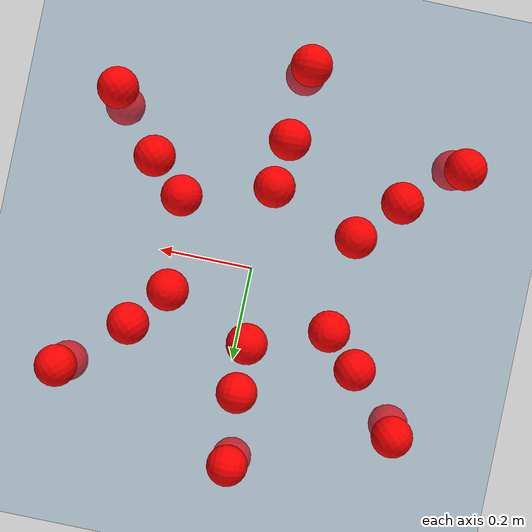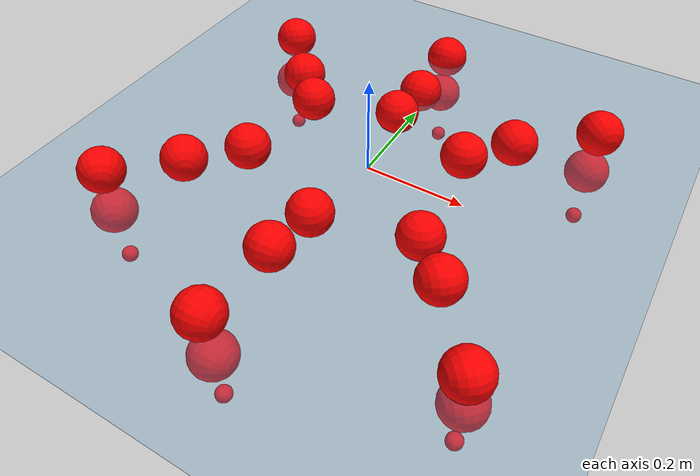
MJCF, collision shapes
<mujoco model="Golem">
  <compiler angle="radian" assetdir="assets" balanceinertia="true" inertiafromgeom="false"/>

  <option timestep="0.005" density="1.2" viscosity="2e-05"/>

  <size nkey="1"/>

  <visual>
    <quality shadowsize="8192"/>
    <map shadowclip="0.5"/>
  </visual>

  <default>
    <default class="/">
      <joint armature="0.01" damping="0.01" frictionloss="0.01"/>
      <geom contype="0" conaffinity="0" group="1" solref="-1000 -80"/>
      <site size="0.01 0.005 0.005" group="5"/>
      <general forcelimited="true" biastype="affine" gainprm="25" biasprm="0 -25 -0.5"/>
      <default class="visual">
        <geom type="mesh" group="2"/>
      </default>
      <default class="collision">
        <geom group="3"/>
      </default>
      <default class="foot">
        <geom size="0.01 0 0" condim="6" group="4" priority="1" solimp="0.015 1 0.01"/>
      </default>
      <default class="reward_collision_sphere">
        <geom group="5" rgba="1 0 0 1"/>
      </default>
    </default>
  </default>

  <asset>
    <texture type="skybox" colorspace="auto" name="//unnamed_texture_0" builtin="gradient" rgb1="0.95 0.95 0.95" rgb2="0.95 0.95 0.95" width="100" height="600"/>
    <texture type="2d" colorspace="auto" name="texplane" builtin="checker" rgb1="0.345 0.575 0.748" rgb2="0.345 0.575 0.748" markrgb="1 1 1" width="512" height="512"/>
    <material name="MatPlane" class="/" texture="texplane" texuniform="true" texrepeat="2 2" specular="0.9"/>
    <mesh name="body" class="/" file="body.stl" scale="0.001 0.001 0.001"/>
    <mesh name="coxa" class="/" file="coxa.stl" scale="0.001 0.001 0.001"/>
    <mesh name="femur" class="/" file="femur.stl" scale="0.001 0.001 0.001"/>
    <mesh name="tibia" class="/" file="tibia.stl" scale="0.001 0.001 0.001"/>
    <mesh name="tarsus" class="/" file="tarsus.stl" scale="0.001 0.001 0.001"/>
  </asset>

  <worldbody>
    <geom name="floor" class="/" size="100 100 0.125" type="plane" group="0" material="MatPlane"/>
    <light name="toplight_shadow" class="/" pos="0 0 5" dir="0.0990148 0.0990148 -0.990148" type="directional" ambient="0.04 0.04 0.04" diffuse="0.55 0.55 0.55" specular="0.12 0.12 0.12"/>
    <light name="toplight_fill" class="/" pos="0 0 5" dir="0.0990148 0.0990148 -0.990148" type="directional" castshadow="false" ambient="0.04 0.04 0.04" diffuse="0.3 0.3 0.3" specular="0.08 0.08 0.08"/>
    <body name="trunk" pos="-0.0131941 -0.00806004 -0.00738589" quat="1 -3.54557e-05 -0.000147043 -0.000269324">
      <inertial pos="-0.00377979 -0.0025478 -0.00349659" quat="0.999998 -0.000483623 0.00189599 -6.59099e-05" mass="5.338" diaginertia="0.0326998 0.085876 0.000901638"/>
      <joint name="//unnamed_joint_0" type="free"/>
      <geom name="//unnamed_geom_1" class="/" pos="0 0 0.039624" quat="1 0 0 0" type="mesh" rgba="0.9 0.9 0.9 1" mesh="body"/>
      <site name="imu" class="/" pos="0.0956668 -0.059198 0.0408082" size="0.0111639"/>
      <camera name="track" class="/" pos="0 -3.04218 0" quat="0.707107 0.707107 0 0" mode="trackcom"/>
      <camera name="ego_camera" class="/" pos="0.157165 0 0.0619125" quat="-0.5 -0.5 0.5 0.5"/>
      <body name="coxa_RR" pos="-0.215167 -0.12583 0.0529185" quat="0.382604 0.000140065 9.04771e-05 -0.923912">
        <inertial pos="-0.00116108 0.0138995 0.00612573" quat="0.998873 -0.00309679 -0.0441685 0.0171028" mass="0.315551" diaginertia="0.027858 0.0880714 0.000990589"/>
        <joint name="coxa_joint_RR" class="/" pos="0 0 0" axis="-0.0201135 -0.0237617 -0.999515" stiffness="0.0603475" range="-3.16272 3.15573" armature="0.0168745" damping="0.0321336" frictionloss="0.0108663"/>
        <geom name="//unnamed_geom_2" class="/" type="mesh" rgba="0.2 0.2 0.2 1" mesh="coxa"/>
        <geom name="//unnamed_geom_3" class="reward_collision_sphere" size="0.0446556" pos="-0.0362688 0 0"/>
        <body name="femur_RR" pos="0.0844332 0.00702351 0.00199173" quat="0.500247 -0.500233 0.499894 0.499625">
          <inertial pos="0.00669895 0.00543845 -0.000627159" quat="0.99976 -0.00900569 -0.00450501 -0.0194685" mass="0.283498" diaginertia="0.0262897 0.0783188 0.000752541"/>
          <joint name="femur_joint_RR" class="/" pos="0 0 0" axis="0.0196778 -0.00280101 -0.999802" stiffness="0.0623214" range="-2.90524 3.32559" armature="0.0132233" damping="0.0108634" frictionloss="0.0049614"/>
          <geom name="//unnamed_geom_4" class="/" type="mesh" rgba="0.9 0.9 0.9 1" mesh="femur"/>
          <geom name="//unnamed_geom_5" class="reward_collision_sphere" size="0.0446556"/>
          <body name="tibia_RR" pos="0.00920729 -0.151641 -0.0140988" quat="0.00643856 0.999977 -5.23155e-05 0.00233953">
            <inertial pos="0.0117533 0.00259514 -0.000884749" quat="0.999997 0.000716789 9.92616e-05 0.00238294" mass="0.26677" diaginertia="0.0288284 0.0941022 0.00110867"/>
            <joint name="tibia_joint_RR" class="/" pos="0 0 0" axis="-0.0571495 -0.00828983 0.998331" range="-3.26455 2.97221" armature="0.0123256" damping="0.0300904" frictionloss="0.011381"/>
            <geom name="//unnamed_geom_6" class="/" type="mesh" rgba="0.2 0.2 0.2 1" mesh="tibia"/>
            <geom name="//unnamed_geom_7" class="reward_collision_sphere" size="0.0446556"/>
            <body name="tarsus_RR" pos="0.0958112 -0.000638676 -0.0112774" quat="1 -0.000339463 -5.90159e-06 -8.66513e-05">
              <inertial pos="0.0609946 0.000752413 -0.00653952" quat="0.488195 0.51308 0.501662 0.496739" mass="0.28191" diaginertia="0.0248426 0.0756204 0.000928131"/>
              <joint name="tarsus_joint_RR" class="/" pos="0 0 0" axis="0.000413269 -0.00047878 1" range="-2.90676 2.96481" armature="0.0133059" damping="0.0288097" frictionloss="0.0149096"/>
              <geom name="//unnamed_geom_8" class="/" type="mesh" rgba="0.9 0.9 0.9 1" mesh="tarsus"/>
              <geom name="foot_1" class="foot" size="0.0110992" pos="0.135403 0 0" quat="0 -0.707107 0 0.707107"/>
              <geom name="//unnamed_geom_10" class="reward_collision_sphere" size="0.0446556"/>
              <geom name="//unnamed_geom_11" class="reward_collision_sphere" size="0.0167459" pos="0.129963 0 0"/>
              <site name="foot_1" class="foot" pos="0.135403 0 0" quat="0 -0.707107 0 0.707107" size="0.0111639"/>
            </body>
          </body>
        </body>
      </body>
      <body name="coxa_RM" pos="-0.000681833 -0.207474 0.0350157" quat="0.704776 -0.000470777 0.00270017 -0.709425">
        <inertial pos="-0.00973713 0.000963419 0.00647366" quat="0.999492 0.0169634 0.00992642 0.0250963" mass="0.295296" diaginertia="0.0277636 0.0938751 0.000795393"/>
        <joint name="coxa_joint_RM" class="/" pos="0 0 0" axis="-0.0144525 -0.00411276 -0.999887" range="-3.03275 3.08669" armature="0.0101807" damping="0.0557561" frictionloss="0.0195243"/>
        <geom name="//unnamed_geom_12" class="/" type="mesh" rgba="0.2 0.2 0.2 1" mesh="coxa"/>
        <geom name="//unnamed_geom_13" class="reward_collision_sphere" size="0.0446556" pos="-0.0362688 0 0"/>
        <body name="femur_RM" pos="0.0675161 -0.0111505 0.0046709" quat="0.494666 -0.502855 0.500383 0.502056">
          <inertial pos="-0.00330869 0.00580811 -0.000155598" quat="0.999684 0.024658 0.00483699 -0.000936564" mass="0.229432" diaginertia="0.0212494 0.0763528 0.000761841"/>
          <joint name="femur_joint_RM" class="/" pos="0 0 0" axis="-0.0403558 0.00240053 -0.999182" range="-3.15554 3.11456" armature="0.0149116" damping="0" frictionloss="0.0111973"/>
          <geom name="//unnamed_geom_14" class="/" type="mesh" rgba="0.9 0.9 0.9 1" mesh="femur"/>
          <geom name="//unnamed_geom_15" class="reward_collision_sphere" size="0.0446556"/>
          <body name="tibia_RM" pos="0.00176522 -0.163612 -0.0136854" quat="-1.26525e-06 1 -3.63726e-06 2.4895e-06">
            <inertial pos="-0.00908106 0.0135985 0.000727398" quat="0.998192 0.0141269 0.0500386 0.0301531" mass="0.339893" diaginertia="0.0272181 0.0715035 0.000994298"/>
            <joint name="tibia_joint_RM" class="/" pos="0 0 0" axis="-0.00261685 -0.00927288 0.999954" range="-2.89849 2.84104" armature="0.0119777" damping="0.0182419" frictionloss="0.00934937"/>
            <geom name="//unnamed_geom_16" class="/" type="mesh" rgba="0.2 0.2 0.2 1" mesh="tibia"/>
            <geom name="//unnamed_geom_17" class="reward_collision_sphere" size="0.0446556"/>
            <body name="tarsus_RM" pos="0.108068 0.00263403 -0.00878423" quat="1 0.000322676 -0.000433128 0.000290347">
              <inertial pos="0.0696798 0.00894131 -0.0100606" quat="0.486947 0.455837 0.503069 0.549561" mass="0.229107" diaginertia="0.0293301 0.0887734 0.00101805"/>
              <joint name="tarsus_joint_RM" class="/" pos="0 0 0" axis="-0.00185686 0.00142162 0.999997" stiffness="0.0463576" range="-3.31112 3.21802" armature="0.00779871" damping="0.00209699" frictionloss="0.0105666"/>
              <geom name="//unnamed_geom_18" class="/" type="mesh" rgba="0.9 0.9 0.9 1" mesh="tarsus"/>
              <geom name="foot_2" class="foot" size="0.00959467" pos="0.135403 0 0" quat="0 -0.707107 0 0.707107"/>
              <geom name="//unnamed_geom_20" class="reward_collision_sphere" size="0.0446556"/>
              <geom name="//unnamed_geom_21" class="reward_collision_sphere" size="0.0167459" pos="0.129963 0 0"/>
              <site name="foot_2" class="foot" pos="0.135403 0 0" quat="0 -0.707107 0 0.707107" size="0.0111639"/>
            </body>
          </body>
        </body>
      </body>
      <body name="coxa_RF" pos="0.215371 -0.139743 0.0278984" quat="0.923898 8.96768e-07 -4.68434e-05 -0.382639">
        <inertial pos="0.00445372 -0.00753941 0.00027458" quat="0.99999 0.00212332 0.00354315 -0.00165453" mass="0.270345" diaginertia="0.0256913 0.0742112 0.000951825"/>
        <joint name="coxa_joint_RF" class="/" pos="0 0 0" axis="0.000547445 -0.00263394 -0.999996" stiffness="0.00445664" range="-3.13166 3.06799" armature="0.00490044" damping="0.00573319" frictionloss="0.0109436"/>
        <geom name="//unnamed_geom_22" class="/" type="mesh" rgba="0.2 0.2 0.2 1" mesh="coxa"/>
        <geom name="//unnamed_geom_23" class="reward_collision_sphere" size="0.0446556" pos="-0.0362688 0 0"/>
        <body name="femur_RF" pos="0.0648918 0.0013802 0.00318535" quat="0.49855 -0.49996 0.502025 0.499457">
          <inertial pos="-0.00579014 0.00869087 0.000271122" quat="0.999546 0.00652061 0.00873874 0.0280767" mass="0.304666" diaginertia="0.0256517 0.0972952 0.000830554"/>
          <joint name="femur_joint_RF" class="/" pos="0 0 0" axis="-0.00260066 0.00466256 -0.999986" range="-2.869 3.04939" armature="0.0181224" damping="0.00503989" frictionloss="0.00537797"/>
          <geom name="//unnamed_geom_24" class="/" type="mesh" rgba="0.9 0.9 0.9 1" mesh="femur"/>
          <geom name="//unnamed_geom_25" class="reward_collision_sphere" size="0.0446556"/>
          <body name="tibia_RF" pos="0.0103849 -0.166898 -0.0141593" quat="-0.00022412 1 -0.000119175 -0.000168117">
            <inertial pos="0.0139975 0.000361049 0.00285454" quat="0.999998 -0.00159269 9.71059e-05 -0.000826858" mass="0.225881" diaginertia="0.0273693 0.0700837 0.000872691"/>
            <joint name="tibia_joint_RF" class="/" pos="0 0 0" axis="-0.0136126 -0.0663154 0.997706" range="-3.06659 3.41203" armature="0.013819" damping="0.0024223" frictionloss="0.0111227"/>
            <geom name="//unnamed_geom_26" class="/" type="mesh" rgba="0.2 0.2 0.2 1" mesh="tibia"/>
            <geom name="//unnamed_geom_27" class="reward_collision_sphere" size="0.0446556"/>
            <body name="tarsus_RF" pos="0.114148 -0.0125491 -0.0113357" quat="0.999979 -0.00532426 -0.00339989 0.001335">
              <inertial pos="0.0720894 -0.00274906 0.000292947" quat="0.5005 0.499632 0.499462 0.500405" mass="0.285114" diaginertia="0.0253693 0.0853952 0.000830821"/>
              <joint name="tarsus_joint_RF" class="/" pos="0 0 0" axis="0.00105641 -0.0418074 0.999125" stiffness="0.0272893" range="-3.02826 3.20962" armature="0.00692406" damping="0.00480453" frictionloss="0.0150809"/>
              <geom name="//unnamed_geom_28" class="/" type="mesh" rgba="0.9 0.9 0.9 1" mesh="tarsus"/>
              <geom name="foot_3" class="foot" size="0.00698961" pos="0.135403 0 0" quat="0 -0.707107 0 0.707107"/>
              <geom name="//unnamed_geom_30" class="reward_collision_sphere" size="0.0446556"/>
              <geom name="//unnamed_geom_31" class="reward_collision_sphere" size="0.0167459" pos="0.129963 0 0"/>
              <site name="foot_3" class="foot" pos="0.135403 0 0" quat="0 -0.707107 0 0.707107" size="0.0111639"/>
            </body>
          </body>
        </body>
      </body>
      <body name="coxa_LR" pos="-0.201427 0.130678 0.0381336" quat="0.382474 -0.000458053 -0.000251359 0.923966">
        <inertial pos="0.0126731 -0.00701032 0.0145612" quat="0.997663 -0.0169818 -0.0636009 0.0183192" mass="0.272578" diaginertia="0.0228244 0.0583332 0.000753732"/>
        <joint name="coxa_joint_LR" class="/" pos="0 0 0" axis="0.0310802 -0.0567937 -0.997902" range="-3.05942 3.28529" armature="0.0155854" damping="0.0221727" frictionloss="0.0171288"/>
        <geom name="//unnamed_geom_32" class="/" type="mesh" rgba="0.2 0.2 0.2 1" mesh="coxa"/>
        <geom name="//unnamed_geom_33" class="reward_collision_sphere" size="0.0446556" pos="-0.0362688 0 0"/>
        <body name="femur_LR" pos="0.0615156 0.000445306 -0.00143817" quat="0.50003 -0.499714 0.500129 0.500127">
          <inertial pos="0.00540044 -0.000825884 0.000923647" quat="0.999281 0.020643 -0.0257196 0.0187049" mass="0.277865" diaginertia="0.0263911 0.071 0.000923584"/>
          <joint name="femur_joint_LR" class="/" pos="0 0 0" axis="-0.0252717 0.031927 0.999171" range="-3.22474 3.14673" armature="0.00976063" damping="0" frictionloss="0.0190652"/>
          <geom name="//unnamed_geom_34" class="/" type="mesh" rgba="0.9 0.9 0.9 1" mesh="femur"/>
          <geom name="//unnamed_geom_35" class="reward_collision_sphere" size="0.0446556"/>
          <body name="tibia_LR" pos="0.00998171 -0.164137 -0.0117281" quat="-0.00608263 0.999981 0.000152374 0.00126308">
            <inertial pos="-0.000114263 -4.25643e-05 -6.22584e-05" quat="0.999943 -0.00401974 0.00765784 0.00624568" mass="0.239322" diaginertia="0.0235653 0.0781986 0.000844876"/>
            <joint name="tibia_joint_LR" class="/" pos="0 0 0" axis="0.00900155 0.0369071 -0.999278" range="-2.99644 3.35143" armature="0.0114918" damping="0.0193045" frictionloss="0.0108626"/>
            <geom name="//unnamed_geom_36" class="/" type="mesh" rgba="0.2 0.2 0.2 1" mesh="tibia"/>
            <geom name="//unnamed_geom_37" class="reward_collision_sphere" size="0.0446556"/>
            <body name="tarsus_LR" pos="0.11816 0.000623437 -0.0104066" quat="0.999979 -0.000757672 -0.00235504 -0.00598192">
              <inertial pos="0.0585561 0.000460515 0.0138901" quat="0.497396 0.496757 0.501647 0.504163" mass="0.290642" diaginertia="0.0247205 0.0860934 0.000863168"/>
              <joint name="tarsus_joint_LR" class="/" pos="0 0 0" axis="0.0190099 -0.0570424 -0.998191" stiffness="0.000971039" range="-2.91459 3.3639" armature="0.0105769" damping="0.0327073" frictionloss="0.00836499"/>
              <geom name="//unnamed_geom_38" class="/" type="mesh" rgba="0.9 0.9 0.9 1" mesh="tarsus"/>
              <geom name="foot_4" class="foot" size="0.00783896" pos="0.135403 0 0" quat="0.707107 0 -0.707107 0"/>
              <geom name="//unnamed_geom_40" class="reward_collision_sphere" size="0.0446556"/>
              <geom name="//unnamed_geom_41" class="reward_collision_sphere" size="0.0167459" pos="0.129963 0 0"/>
              <site name="foot_4" class="foot" pos="0.135403 0 0" quat="0.707107 0 -0.707107 0" size="0.0111639"/>
            </body>
          </body>
        </body>
      </body>
      <body name="coxa_LM" pos="-0.0105025 0.2035 0.0283166" quat="0.706022 -0.00137262 -0.00257198 0.708184">
        <inertial pos="-0.00368302 0.00500247 0.0026124" quat="0.999052 -0.00596905 0.0427852 0.00530688" mass="0.297393" diaginertia="0.0300351 0.0849857 0.000955369"/>
        <joint name="coxa_joint_LM" class="/" pos="0 0 0" axis="0.00213172 0.00863906 -0.99996" stiffness="0.0424285" range="-3.36261 3.13599" armature="0.00751007" damping="0" frictionloss="0.00524266"/>
        <geom name="//unnamed_geom_42" class="/" type="mesh" rgba="0.2 0.2 0.2 1" mesh="coxa"/>
        <geom name="//unnamed_geom_43" class="reward_collision_sphere" size="0.0446556" pos="-0.0362688 0 0"/>
        <body name="femur_LM" pos="0.0719024 -0.000151904 -0.0137099" quat="0.502385 -0.5016 0.499795 0.496198">
          <inertial pos="-0.00669849 0.0112408 -0.0143597" quat="0.997851 0.00930447 -0.0596072 0.0255796" mass="0.266045" diaginertia="0.0223591 0.0918827 0.000807686"/>
          <joint name="femur_joint_LM" class="/" pos="0 0 0" axis="0.0223977 -0.0367722 0.999073" range="-3.11727 3.35418" armature="0.00716651" damping="0.000469386" frictionloss="0.011876"/>
          <geom name="//unnamed_geom_44" class="/" type="mesh" rgba="0.9 0.9 0.9 1" mesh="femur"/>
          <geom name="//unnamed_geom_45" class="reward_collision_sphere" size="0.0446556"/>
          <body name="tibia_LM" pos="0.00729848 -0.157726 0.0116462" quat="-0.00687869 0.999974 0.000254194 -0.00208364">
            <inertial pos="-0.00305572 0.0150008 -0.00458991" quat="0.999016 0.00333596 0.0127143 -0.0423671" mass="0.294924" diaginertia="0.0241558 0.0687669 0.000851272"/>
            <joint name="tibia_joint_LM" class="/" pos="0 0 0" axis="-0.0113494 -0.00405364 -0.999927" stiffness="0.0191372" range="-3.12082 3.04997" armature="0.00493656" damping="0.0736371" frictionloss="0.0152659"/>
            <geom name="//unnamed_geom_46" class="/" type="mesh" rgba="0.2 0.2 0.2 1" mesh="tibia"/>
            <geom name="//unnamed_geom_47" class="reward_collision_sphere" size="0.0446556"/>
            <body name="tarsus_LM" pos="0.107945 0.00285416 -0.00850286" quat="0.999972 -0.00190616 -0.00427895 0.00580769">
              <inertial pos="0.0819153 -0.00049921 0.00730794" quat="0.499221 0.500585 0.498936 0.501255" mass="0.29046" diaginertia="0.0325593 0.0995797 0.00093924"/>
              <joint name="tarsus_joint_LM" class="/" pos="0 0 0" axis="0.00475964 0.00247661 -0.999986" stiffness="0.0132363" range="-3.4248 3.06869" armature="0.00445843" damping="0.0814388" frictionloss="0.00799388"/>
              <geom name="//unnamed_geom_48" class="/" type="mesh" rgba="0.9 0.9 0.9 1" mesh="tarsus"/>
              <geom name="foot_5" class="foot" size="0.00893664" pos="0.135403 0 0" quat="0.707107 0 -0.707107 0"/>
              <geom name="//unnamed_geom_50" class="reward_collision_sphere" size="0.0446556"/>
              <geom name="//unnamed_geom_51" class="reward_collision_sphere" size="0.0167459" pos="0.129963 0 0"/>
              <site name="foot_5" class="foot" pos="0.135403 0 0" quat="0.707107 0 -0.707107 0" size="0.0111639"/>
            </body>
          </body>
        </body>
      </body>
      <body name="coxa_LF" pos="0.200832 0.113087 0.0532168" quat="0.92387 0.000101695 -0.000238761 0.382707">
        <inertial pos="0.000625208 -0.000775726 0.00555991" quat="0.998922 0.0284387 0.0274808 0.0243034" mass="0.357107" diaginertia="0.0300955 0.0964674 0.0010866"/>
        <joint name="coxa_joint_LF" class="/" pos="0 0 0" axis="-0.0017566 0.00375587 -0.999991" stiffness="0.00946827" range="-3.01426 2.85547" armature="0.00502703" damping="0.082813" frictionloss="0.0162111"/>
        <geom name="//unnamed_geom_52" class="/" type="mesh" rgba="0.2 0.2 0.2 1" mesh="coxa"/>
        <geom name="//unnamed_geom_53" class="reward_collision_sphere" size="0.0446556" pos="-0.0362688 0 0"/>
        <body name="femur_LF" pos="0.0721098 0.0129741 -0.0022769" quat="0.502086 -0.50186 0.501499 0.494514">
          <inertial pos="-0.0139735 0.00084048 -0.000419646" quat="0.99982 0.0148937 0.00380918 0.0111189" mass="0.301506" diaginertia="0.0274929 0.0845962 0.00105939"/>
          <joint name="femur_joint_LF" class="/" pos="0 0 0" axis="-0.00101237 0.000406711 0.999999" range="-3.309 3.08623" armature="0.00499576" damping="0" frictionloss="0.0131595"/>
          <geom name="//unnamed_geom_54" class="/" type="mesh" rgba="0.9 0.9 0.9 1" mesh="femur"/>
          <geom name="//unnamed_geom_55" class="reward_collision_sphere" size="0.0446556"/>
          <body name="tibia_LF" pos="0.00570676 -0.176641 -0.0083563" quat="-0.000254334 1 -0.000253794 0.000209059">
            <inertial pos="0.00212418 -0.00993179 -0.00616408" quat="0.999796 0.00621378 0.00913576 0.0169259" mass="0.297543" diaginertia="0.0268496 0.0798357 0.000912551"/>
            <joint name="tibia_joint_LF" class="/" pos="0 0 0" axis="0.0110474 -0.00288831 -0.999935" stiffness="0.0391904" range="-3.14966 3.12534" armature="0.0162732" damping="0.0515721" frictionloss="0.00724598"/>
            <geom name="//unnamed_geom_56" class="/" type="mesh" rgba="0.2 0.2 0.2 1" mesh="tibia"/>
            <geom name="//unnamed_geom_57" class="reward_collision_sphere" size="0.0446556"/>
            <body name="tarsus_LF" pos="0.102125 -0.00293839 -0.00264907" quat="0.999978 -0.00164291 -0.00634427 -0.000709548">
              <inertial pos="0.0713446 0.000303863 0.00674351" quat="0.480795 0.53763 0.476549 0.502685" mass="0.23987" diaginertia="0.0243628 0.0670386 0.000789116"/>
              <joint name="tarsus_joint_LF" class="/" pos="0 0 0" axis="-0.0248952 -0.0237071 -0.999409" range="-2.93312 3.0045" armature="0.011855" damping="0.0795234" frictionloss="0.0114551"/>
              <geom name="//unnamed_geom_58" class="/" type="mesh" rgba="0.9 0.9 0.9 1" mesh="tarsus"/>
              <geom name="foot_6" class="foot" size="0.0103112" pos="0.135403 0 0" quat="0.707107 0 -0.707107 0"/>
              <geom name="//unnamed_geom_60" class="reward_collision_sphere" size="0.0446556"/>
              <geom name="//unnamed_geom_61" class="reward_collision_sphere" size="0.0167459" pos="0.129963 0 0"/>
              <site name="foot_6" class="foot" pos="0.135403 0 0" quat="0.707107 0 -0.707107 0" size="0.0111639"/>
            </body>
          </body>
        </body>
      </body>
    </body>
  </worldbody>

  <contact>
    <pair class="/" geom1="floor" geom2="foot_1" name="//unnamed_contact_0"/>
    <pair class="/" geom1="floor" geom2="foot_2" name="//unnamed_contact_1"/>
    <pair class="/" geom1="floor" geom2="foot_3" name="//unnamed_contact_2"/>
    <pair class="/" geom1="floor" geom2="foot_4" name="//unnamed_contact_3"/>
    <pair class="/" geom1="floor" geom2="foot_5" name="//unnamed_contact_4"/>
    <pair class="/" geom1="floor" geom2="foot_6" name="//unnamed_contact_5"/>
  </contact>

  <actuator>
    <general name="coxa_joint_RR" class="/" joint="coxa_joint_RR" forcerange="-7.82484 7.82484" gainprm="25.0062" biasprm="0 -25.0062 -0.573242"/>
    <general name="femur_joint_RR" class="/" joint="femur_joint_RR" forcerange="-7.85022 7.85022" gainprm="25.0062" biasprm="0 -25.0062 -0.573242"/>
    <general name="tibia_joint_RR" class="/" joint="tibia_joint_RR" forcerange="-8.51668 8.51668" gainprm="25.0062" biasprm="0 -25.0062 -0.573242"/>
    <general name="tarsus_joint_RR" class="/" joint="tarsus_joint_RR" forcerange="-5.05011 5.05011" gainprm="25.0062" biasprm="0 -25.0062 -0.573242"/>
    <general name="coxa_joint_RM" class="/" joint="coxa_joint_RM" forcerange="-12.3261 12.3261" gainprm="25.0062" biasprm="0 -25.0062 -0.573242"/>
    <general name="femur_joint_RM" class="/" joint="femur_joint_RM" forcerange="-8.99812 8.99812" gainprm="25.0062" biasprm="0 -25.0062 -0.573242"/>
    <general name="tibia_joint_RM" class="/" joint="tibia_joint_RM" forcerange="-10.7086 10.7086" gainprm="25.0062" biasprm="0 -25.0062 -0.573242"/>
    <general name="tarsus_joint_RM" class="/" joint="tarsus_joint_RM" forcerange="-7.87049 7.87049" gainprm="25.0062" biasprm="0 -25.0062 -0.573242"/>
    <general name="coxa_joint_RF" class="/" joint="coxa_joint_RF" forcerange="-12.0708 12.0708" gainprm="25.0062" biasprm="0 -25.0062 -0.573242"/>
    <general name="femur_joint_RF" class="/" joint="femur_joint_RF" forcerange="-10.4584 10.4584" gainprm="25.0062" biasprm="0 -25.0062 -0.573242"/>
    <general name="tibia_joint_RF" class="/" joint="tibia_joint_RF" forcerange="-12.4928 12.4928" gainprm="25.0062" biasprm="0 -25.0062 -0.573242"/>
    <general name="tarsus_joint_RF" class="/" joint="tarsus_joint_RF" forcerange="-5.96045 5.96045" gainprm="25.0062" biasprm="0 -25.0062 -0.573242"/>
    <general name="coxa_joint_LR" class="/" joint="coxa_joint_LR" forcerange="-8.14951 8.14951" gainprm="25.0062" biasprm="0 -25.0062 -0.573242"/>
    <general name="femur_joint_LR" class="/" joint="femur_joint_LR" forcerange="-8.1792 8.1792" gainprm="25.0062" biasprm="0 -25.0062 -0.573242"/>
    <general name="tibia_joint_LR" class="/" joint="tibia_joint_LR" forcerange="-8.11629 8.11629" gainprm="25.0062" biasprm="0 -25.0062 -0.573242"/>
    <general name="tarsus_joint_LR" class="/" joint="tarsus_joint_LR" forcerange="-6.59964 6.59964" gainprm="25.0062" biasprm="0 -25.0062 -0.573242"/>
    <general name="coxa_joint_LM" class="/" joint="coxa_joint_LM" forcerange="-4.78149 4.78149" gainprm="25.0062" biasprm="0 -25.0062 -0.573242"/>
    <general name="femur_joint_LM" class="/" joint="femur_joint_LM" forcerange="-8.15148 8.15148" gainprm="25.0062" biasprm="0 -25.0062 -0.573242"/>
    <general name="tibia_joint_LM" class="/" joint="tibia_joint_LM" forcerange="-8.39549 8.39549" gainprm="25.0062" biasprm="0 -25.0062 -0.573242"/>
    <general name="tarsus_joint_LM" class="/" joint="tarsus_joint_LM" forcerange="-8.16077 8.16077" gainprm="25.0062" biasprm="0 -25.0062 -0.573242"/>
    <general name="coxa_joint_LF" class="/" joint="coxa_joint_LF" forcerange="-12.5896 12.5896" gainprm="25.0062" biasprm="0 -25.0062 -0.573242"/>
    <general name="femur_joint_LF" class="/" joint="femur_joint_LF" forcerange="-8.3717 8.3717" gainprm="25.0062" biasprm="0 -25.0062 -0.573242"/>
    <general name="tibia_joint_LF" class="/" joint="tibia_joint_LF" forcerange="-7.1956 7.1956" gainprm="25.0062" biasprm="0 -25.0062 -0.573242"/>
    <general name="tarsus_joint_LF" class="/" joint="tarsus_joint_LF" forcerange="-10.4762 10.4762" gainprm="25.0062" biasprm="0 -25.0062 -0.573242"/>
  </actuator>

  <sensor>
    <gyro site="imu" name="imu_angular_velocity"/>
    <velocimeter site="imu" name="imu_linear_velocity"/>
    <framelinvel objtype="site" objname="foot_1" name="foot_1_global_linear_velocity"/>
    <framelinvel objtype="site" objname="foot_2" name="foot_2_global_linear_velocity"/>
    <framelinvel objtype="site" objname="foot_3" name="foot_3_global_linear_velocity"/>
    <framelinvel objtype="site" objname="foot_4" name="foot_4_global_linear_velocity"/>
    <framelinvel objtype="site" objname="foot_5" name="foot_5_global_linear_velocity"/>
    <framelinvel objtype="site" objname="foot_6" name="foot_6_global_linear_velocity"/>
  </sensor>

  <keyframe>
    <key name="home" qpos="0 0 0.1457 1 0 0 0 0 0 0 0 0 0 0 0 0 0 0 0 0 0 0 0 0 0 0 0 0 0 0 0"/>
  </keyframe>
</mujoco>
